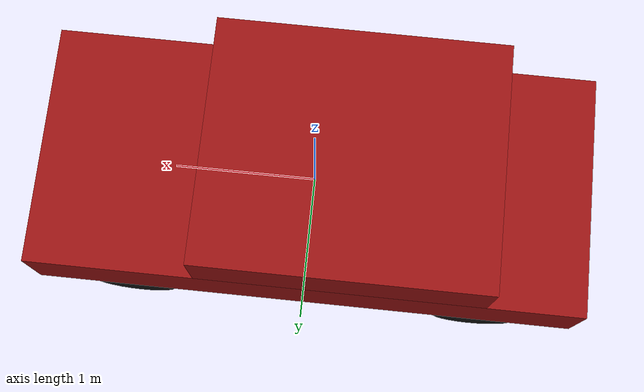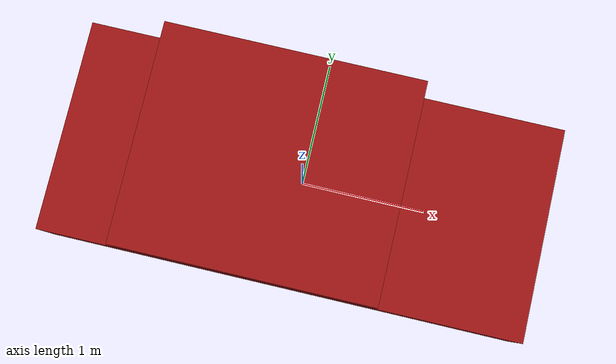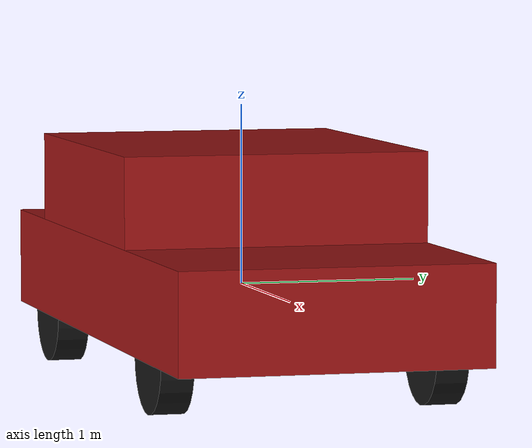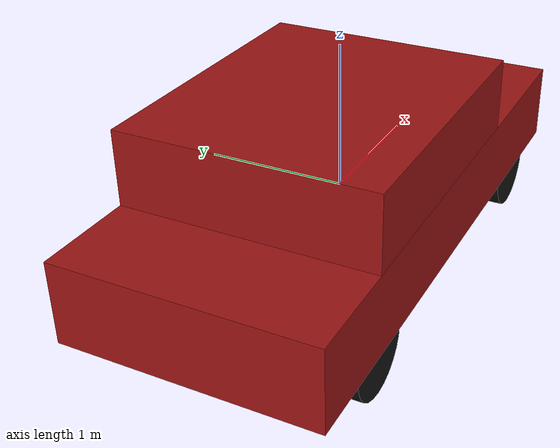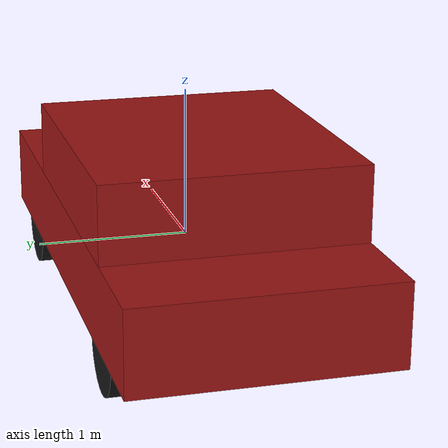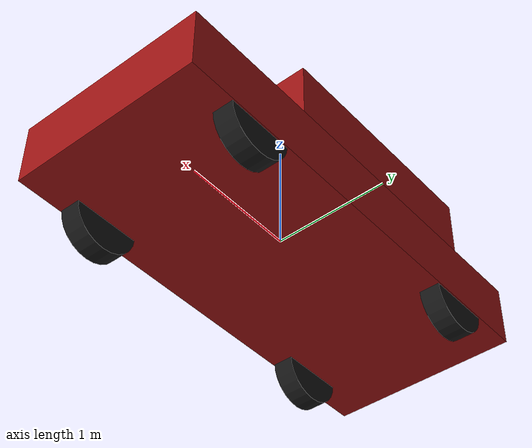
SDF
<?xml version="1.0"?>
<!-- Generated by sim/gazebo/package.py from configs/sim/gazebo.yaml. Do not edit. -->
<sdf version="1.10">
  <model name="car">
    <link name="base_link">
      <inertial>
        <mass>950</mass>
        <inertia>
          <ixx>252.739583</ixx>
          <iyy>1197.395833</iyy>
          <izz>1402.239583</izz>
          <ixy>0</ixy>
          <ixz>0</ixz>
          <iyz>0</iyz>
        </inertia>
      </inertial>
      <visual name="body_visual">
        <geometry>
          <box>
            <size>3.85 1.7 0.55</size>
          </box>
        </geometry>
        <material>
          <ambient>0.62 0.08 0.08 1</ambient>
          <diffuse>0.62 0.08 0.08 1</diffuse>
        </material>
      </visual>
      <collision name="body_collision">
        <geometry>
          <box>
            <size>3.85 1.7 0.55</size>
          </box>
        </geometry>
      </collision>
      <visual name="cabin">
        <pose>-0.25 0 0.525 0 0 0</pose>
        <geometry>
          <box>
            <size>2 1.7 0.5</size>
          </box>
        </geometry>
        <material>
          <ambient>0.62 0.08 0.08 1</ambient>
          <diffuse>0.62 0.08 0.08 1</diffuse>
        </material>
      </visual>
      <sensor name="dashcam" type="camera">
        <pose>1.95 0 0.75 0 0.174533 0</pose>
        <always_on>true</always_on>
        <update_rate>30</update_rate>
        <visualize>false</visualize>
        <topic>/camera/image_raw</topic>
        <gz_frame_id>camera_optical_frame</gz_frame_id>
        <camera name="dashcam">
          <camera_info_topic>/camera/camera_info</camera_info_topic>
          <horizontal_fov>1.2</horizontal_fov>
          <image>
            <width>1280</width>
            <height>720</height>
            <format>R8G8B8</format>
            <anti_aliasing>4</anti_aliasing>
          </image>
          <clip>
            <near>0.1</near>
            <far>600</far>
          </clip>
          <noise>
            <type>gaussian</type>
            <mean>0</mean>
            <stddev>0.009804</stddev>
          </noise>
        </camera>
      </sensor>
    </link>
    <link name="front_left_hub">
      <pose>1.225 0.75 -0.26 0 0 0</pose>
      <inertial>
        <mass>15</mass>
        <inertia>
          <ixx>0.0384</ixx>
          <iyy>0.0384</iyy>
          <izz>0.0384</izz>
          <ixy>0</ixy>
          <ixz>0</ixz>
          <iyz>0</iyz>
        </inertia>
      </inertial>
    </link>
    <joint name="front_left_suspension" type="prismatic">
      <parent>base_link</parent>
      <child>front_left_hub</child>
      <axis>
        <xyz>0 0 1</xyz>
        <limit>
          <lower>-0.1</lower>
          <upper>0.1</upper>
        </limit>
        <dynamics>
          <damping>1462.41138</damping>
          <spring_reference>-0.126651</spring_reference>
          <spring_stiffness>18377.203395</spring_stiffness>
        </dynamics>
      </axis>
    </joint>
    <link name="front_left_steer">
      <pose>1.225 0.75 -0.26 0 0 0</pose>
      <inertial>
        <mass>15</mass>
        <inertia>
          <ixx>0.0384</ixx>
          <iyy>0.0384</iyy>
          <izz>0.0384</izz>
          <ixy>0</ixy>
          <ixz>0</ixz>
          <iyz>0</iyz>
        </inertia>
      </inertial>
    </link>
    <joint name="front_left_steering" type="revolute">
      <parent>front_left_hub</parent>
      <child>front_left_steer</child>
      <axis>
        <xyz>0 0 1</xyz>
        <limit>
          <lower>-0.6</lower>
          <upper>0.6</upper>
          <effort>1.0e6</effort>
        </limit>
      </axis>
    </joint>
    <link name="front_left_wheel">
      <pose>1.225 0.75 -0.26 0 0 0</pose>
      <inertial>
        <mass>15</mass>
        <inertia>
          <ixx>0.355875</ixx>
          <iyy>0.63075</iyy>
          <izz>0.355875</izz>
          <ixy>0</ixy>
          <ixz>0</ixz>
          <iyz>0</iyz>
        </inertia>
      </inertial>
      <visual name="tyre">
        <pose>0 0 0 1.570796 0 0</pose>
        <geometry>
          <cylinder>
            <radius>0.29</radius>
            <length>0.18</length>
          </cylinder>
        </geometry>
        <material>
          <ambient>0.08 0.08 0.08 1</ambient>
          <diffuse>0.08 0.08 0.08 1</diffuse>
        </material>
      </visual>
      <collision name="tyre_collision">
        <geometry>
          <sphere>
            <radius>0.29</radius>
          </sphere>
        </geometry>
        <surface>
          <friction>
            <ode>
              <mu>1</mu>
              <mu2>1</mu2>
            </ode>
          </friction>
        </surface>
      </collision>
    </link>
    <joint name="front_left_wheel_joint" type="revolute">
      <parent>front_left_steer</parent>
      <child>front_left_wheel</child>
      <axis>
        <xyz>0 1 0</xyz>
      </axis>
    </joint>
    <link name="front_right_hub">
      <pose>1.225 -0.75 -0.26 0 0 0</pose>
      <inertial>
        <mass>15</mass>
        <inertia>
          <ixx>0.0384</ixx>
          <iyy>0.0384</iyy>
          <izz>0.0384</izz>
          <ixy>0</ixy>
          <ixz>0</ixz>
          <iyz>0</iyz>
        </inertia>
      </inertial>
    </link>
    <joint name="front_right_suspension" type="prismatic">
      <parent>base_link</parent>
      <child>front_right_hub</child>
      <axis>
        <xyz>0 0 1</xyz>
        <limit>
          <lower>-0.1</lower>
          <upper>0.1</upper>
        </limit>
        <dynamics>
          <damping>1462.41138</damping>
          <spring_reference>-0.126651</spring_reference>
          <spring_stiffness>18377.203395</spring_stiffness>
        </dynamics>
      </axis>
    </joint>
    <link name="front_right_steer">
      <pose>1.225 -0.75 -0.26 0 0 0</pose>
      <inertial>
        <mass>15</mass>
        <inertia>
          <ixx>0.0384</ixx>
          <iyy>0.0384</iyy>
          <izz>0.0384</izz>
          <ixy>0</ixy>
          <ixz>0</ixz>
          <iyz>0</iyz>
        </inertia>
      </inertial>
    </link>
    <joint name="front_right_steering" type="revolute">
      <parent>front_right_hub</parent>
      <child>front_right_steer</child>
      <axis>
        <xyz>0 0 1</xyz>
        <limit>
          <lower>-0.6</lower>
          <upper>0.6</upper>
          <effort>1.0e6</effort>
        </limit>
      </axis>
    </joint>
    <link name="front_right_wheel">
      <pose>1.225 -0.75 -0.26 0 0 0</pose>
      <inertial>
        <mass>15</mass>
        <inertia>
          <ixx>0.355875</ixx>
          <iyy>0.63075</iyy>
          <izz>0.355875</izz>
          <ixy>0</ixy>
          <ixz>0</ixz>
          <iyz>0</iyz>
        </inertia>
      </inertial>
      <visual name="tyre">
        <pose>0 0 0 1.570796 0 0</pose>
        <geometry>
          <cylinder>
            <radius>0.29</radius>
            <length>0.18</length>
          </cylinder>
        </geometry>
        <material>
          <ambient>0.08 0.08 0.08 1</ambient>
          <diffuse>0.08 0.08 0.08 1</diffuse>
        </material>
      </visual>
      <collision name="tyre_collision">
        <geometry>
          <sphere>
            <radius>0.29</radius>
          </sphere>
        </geometry>
        <surface>
          <friction>
            <ode>
              <mu>1</mu>
              <mu2>1</mu2>
            </ode>
          </friction>
        </surface>
      </collision>
    </link>
    <joint name="front_right_wheel_joint" type="revolute">
      <parent>front_right_steer</parent>
      <child>front_right_wheel</child>
      <axis>
        <xyz>0 1 0</xyz>
      </axis>
    </joint>
    <link name="rear_left_hub">
      <pose>-1.225 0.75 -0.26 0 0 0</pose>
      <inertial>
        <mass>15</mass>
        <inertia>
          <ixx>0.0384</ixx>
          <iyy>0.0384</iyy>
          <izz>0.0384</izz>
          <ixy>0</ixy>
          <ixz>0</ixz>
          <iyz>0</iyz>
        </inertia>
      </inertial>
    </link>
    <joint name="rear_left_suspension" type="prismatic">
      <parent>base_link</parent>
      <child>rear_left_hub</child>
      <axis>
        <xyz>0 0 1</xyz>
        <limit>
          <lower>-0.1</lower>
          <upper>0.1</upper>
        </limit>
        <dynamics>
          <damping>1462.41138</damping>
          <spring_reference>-0.126651</spring_reference>
          <spring_stiffness>18377.203395</spring_stiffness>
        </dynamics>
      </axis>
    </joint>
    <link name="rear_left_wheel">
      <pose>-1.225 0.75 -0.26 0 0 0</pose>
      <inertial>
        <mass>15</mass>
        <inertia>
          <ixx>0.355875</ixx>
          <iyy>0.63075</iyy>
          <izz>0.355875</izz>
          <ixy>0</ixy>
          <ixz>0</ixz>
          <iyz>0</iyz>
        </inertia>
      </inertial>
      <visual name="tyre">
        <pose>0 0 0 1.570796 0 0</pose>
        <geometry>
          <cylinder>
            <radius>0.29</radius>
            <length>0.18</length>
          </cylinder>
        </geometry>
        <material>
          <ambient>0.08 0.08 0.08 1</ambient>
          <diffuse>0.08 0.08 0.08 1</diffuse>
        </material>
      </visual>
      <collision name="tyre_collision">
        <geometry>
          <sphere>
            <radius>0.29</radius>
          </sphere>
        </geometry>
        <surface>
          <friction>
            <ode>
              <mu>1</mu>
              <mu2>1</mu2>
            </ode>
          </friction>
        </surface>
      </collision>
    </link>
    <joint name="rear_left_wheel_joint" type="revolute">
      <parent>rear_left_hub</parent>
      <child>rear_left_wheel</child>
      <axis>
        <xyz>0 1 0</xyz>
      </axis>
    </joint>
    <link name="rear_right_hub">
      <pose>-1.225 -0.75 -0.26 0 0 0</pose>
      <inertial>
        <mass>15</mass>
        <inertia>
          <ixx>0.0384</ixx>
          <iyy>0.0384</iyy>
          <izz>0.0384</izz>
          <ixy>0</ixy>
          <ixz>0</ixz>
          <iyz>0</iyz>
        </inertia>
      </inertial>
    </link>
    <joint name="rear_right_suspension" type="prismatic">
      <parent>base_link</parent>
      <child>rear_right_hub</child>
      <axis>
        <xyz>0 0 1</xyz>
        <limit>
          <lower>-0.1</lower>
          <upper>0.1</upper>
        </limit>
        <dynamics>
          <damping>1462.41138</damping>
          <spring_reference>-0.126651</spring_reference>
          <spring_stiffness>18377.203395</spring_stiffness>
        </dynamics>
      </axis>
    </joint>
    <link name="rear_right_wheel">
      <pose>-1.225 -0.75 -0.26 0 0 0</pose>
      <inertial>
        <mass>15</mass>
        <inertia>
          <ixx>0.355875</ixx>
          <iyy>0.63075</iyy>
          <izz>0.355875</izz>
          <ixy>0</ixy>
          <ixz>0</ixz>
          <iyz>0</iyz>
        </inertia>
      </inertial>
      <visual name="tyre">
        <pose>0 0 0 1.570796 0 0</pose>
        <geometry>
          <cylinder>
            <radius>0.29</radius>
            <length>0.18</length>
          </cylinder>
        </geometry>
        <material>
          <ambient>0.08 0.08 0.08 1</ambient>
          <diffuse>0.08 0.08 0.08 1</diffuse>
        </material>
      </visual>
      <collision name="tyre_collision">
        <geometry>
          <sphere>
            <radius>0.29</radius>
          </sphere>
        </geometry>
        <surface>
          <friction>
            <ode>
              <mu>1</mu>
              <mu2>1</mu2>
            </ode>
          </friction>
        </surface>
      </collision>
    </link>
    <joint name="rear_right_wheel_joint" type="revolute">
      <parent>rear_right_hub</parent>
      <child>rear_right_wheel</child>
      <axis>
        <xyz>0 1 0</xyz>
      </axis>
    </joint>
    <plugin filename="gz-sim-ackermann-steering-system" name="gz::sim::systems::AckermannSteering">
      <left_joint>rear_left_wheel_joint</left_joint>
      <right_joint>rear_right_wheel_joint</right_joint>
      <left_steering_joint>front_left_steering</left_steering_joint>
      <right_steering_joint>front_right_steering</right_steering_joint>
      <kingpin_width>1.5</kingpin_width>
      <steering_limit>0.6</steering_limit>
      <steer_p_gain>10</steer_p_gain>
      <wheel_base>2.45</wheel_base>
      <wheel_separation>1.5</wheel_separation>
      <wheel_radius>0.29</wheel_radius>
      <min_velocity>-15</min_velocity>
      <max_velocity>15</max_velocity>
      <min_acceleration>-4</min_acceleration>
      <max_acceleration>2</max_acceleration>
      <topic>/model/car/cmd_vel</topic>
      <odom_topic>/model/car/wheel_odometry</odom_topic>
      <tf_topic>/model/car/wheel_odometry/tf</tf_topic>
      <frame_id>odom</frame_id>
      <child_frame_id>base_link</child_frame_id>
      <odom_publish_frequency>100</odom_publish_frequency>
    </plugin>
    <plugin filename="gz-sim-odometry-publisher-system" name="gz::sim::systems::OdometryPublisher">
      <odom_frame>odom</odom_frame>
      <robot_base_frame>base_link</robot_base_frame>
      <odom_publish_frequency>100</odom_publish_frequency>
      <odom_topic>/model/car/odometry</odom_topic>
      <tf_topic>/model/car/tf</tf_topic>
      <dimensions>3</dimensions>
    </plugin>
    <plugin filename="gz-sim-joint-state-publisher-system" name="gz::sim::systems::JointStatePublisher">
      <topic>/model/car/joint_state</topic>
      <update_rate>100</update_rate>
    </plugin>
  </model>
</sdf>
